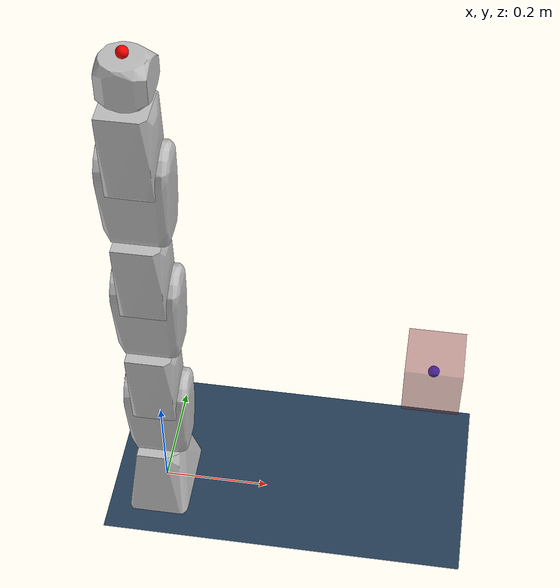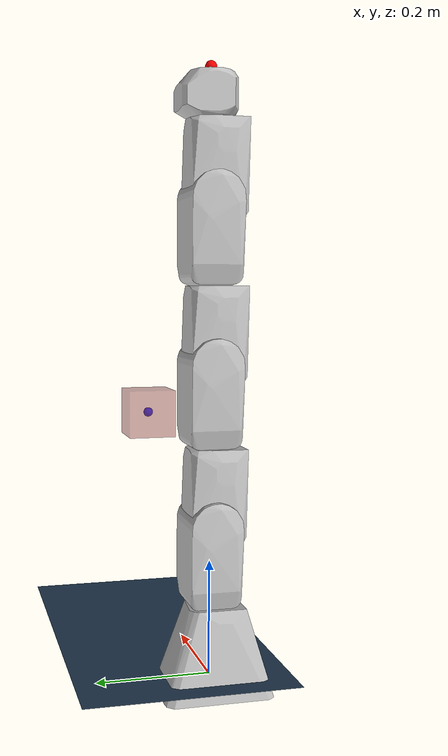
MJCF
<mujoco model="panda scene">
  <include file="rbs_arm_nohand.xml"/>

  <statistic center="0.3 0 0.4" extent="1"/>

  <visual>
    <headlight diffuse="0.6 0.6 0.6" ambient="0.3 0.3 0.3" specular="0 0 0"/>
    <rgba haze="0.15 0.25 0.35 1"/>
    <global azimuth="120" elevation="-20"/>
  </visual>

  <asset>
    <texture type="skybox" builtin="gradient" rgb1="0.3 0.5 0.7" rgb2="0 0 0" width="512" height="3072"/>
    <texture type="2d" name="groundplane" builtin="checker" mark="edge" rgb1="0.2 0.3 0.4" rgb2="0.1 0.2 0.3"
      markrgb="0.8 0.8 0.8" width="300" height="300"/>
    <material name="groundplane" texture="groundplane" texuniform="true" texrepeat="5 5" reflectance="0.2"/>
  </asset>

  <worldbody>
    <light pos="0 0 1.5" dir="0 0 -1" directional="true"/>
    <geom name="floor" size="0 0 0.05" type="plane" material="groundplane"/>

    <body name="target" pos="0.5 0 .4" quat="0 -0.707 -0.707 0" mocap="true">
      <geom type="box" size=".05 .05 .05" contype="0" conaffinity="0" rgba=".6 .3 .3 .5"/>
      <site type="sphere" size="0.01" rgba="0 0 1 1" group="1"/>
    </body>
  </worldbody>
</mujoco>

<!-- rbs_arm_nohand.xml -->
<mujoco model="rbs_arm_new">
  <compiler angle="radian" meshdir="../meshes/collision"></compiler>
  <asset>
    <mesh file="base_link.stl" name="base_link"></mesh>
    <mesh file="axis1_fork.stl" name="axis1_fork"></mesh>
    <mesh file="axis2_main.stl" name="axis2_main"></mesh>
    <mesh file="axis7_tail.stl" name="axis7_tail"></mesh>
  </asset>
  <default>
    <default class="rbs_arm">
      <general biastype="affine" ctrlrange="-6.14159 6.14159" dyntype="none" forcerange="-78 78"></general>
      <joint actuatorfrcrange="-78 78" armature="0.1" damping="1.0" range="-6.14159 6.14159"></joint>
      <default class="finger">
        <joint actuatorfrcrange="-10 10" axis="-1 0 0" pos="0 0 0" range="0 0.064" type="slide"></joint>
      </default>
      <default class="position_actuation">
        <default class="big_joint">
          <position kp="1000" kv="100"></position>
        </default>
        <default class="small_joint">
          <position kp="500" kv="50"></position>
        </default>
      </default>
    </default>
  </default>
  <worldbody>
    <body name="base" pos="0 0 0" childclass="rbs_arm">
    <geom conaffinity="0" contype="0" density="0" group="1" mesh="base_link" rgba="0.75294 0.75294 0.75294 1" type="mesh"></geom>
    <geom mesh="base_link" rgba="0.75294 0.75294 0.75294 1" type="mesh"></geom>
    <body  name="axis1_fork" pos="0 0 0.11165" quat="-3.67321e-06 0 0 -1">
      <inertial diaginertia="0.0044 0.005 0.0012" mass="0.5144" pos="-0.0064 0.0027 0.0675" quat="1.0 0.0 0.0 0.0"></inertial>
      <joint axis="0 0 1" name="joint1" pos="0 0 0"></joint>
      <geom conaffinity="0" contype="0" density="0" group="1" mesh="axis1_fork" rgba="0.75294 0.75294 0.75294 1" type="mesh"></geom>
      <geom mesh="axis1_fork" rgba="0.75294 0.75294 0.75294 1" type="mesh"></geom>
      <body name="axis2_main" pos="0 0 0.15465">
        <inertial diaginertia="0.0133 0.0132 0.0015" mass="1.2559" pos="-0.0017 0.0068 0.0855" quat="1.0 0.0 0.0 0.0"></inertial>
        <joint axis="1 0 0" name="joint2" pos="0 0 0" range="-2.43 2.43"></joint>
        <geom conaffinity="0" contype="0" density="0" group="1" mesh="axis2_main" rgba="0.75294 0.75294 0.75294 1" type="mesh"></geom>
        <geom mesh="axis2_main" rgba="0.75294 0.75294 0.75294 1" type="mesh"></geom>
        <body name="axis3_fork" pos="0 0 0.11995">
          <inertial diaginertia="0.0044 0.005 0.0012" mass="0.5144" pos="-0.0064 0.0027 0.0675" quat="1.0 0.0 0.0 0.0"></inertial>
          <joint axis="0 0 1" name="joint3" pos="0 0 0"></joint>
          <geom conaffinity="0" contype="0" density="0" group="1" mesh="axis1_fork" rgba="0.75294 0.75294 0.75294 1" type="mesh"></geom>
          <geom mesh="axis1_fork" rgba="0.75294 0.75294 0.75294 1" type="mesh"></geom>
          <body name="axis4_main" pos="0 0 0.15465">
            <inertial diaginertia="0.0133 0.0132 0.0015" mass="1.2559" pos="-0.0017 0.0068 0.0855" quat="1.0 0.0 0.0 0.0"></inertial>
            <joint axis="1 0 0" name="joint4" pos="0 0 0" range="-2.43 2.43"></joint>
            <geom conaffinity="0" contype="0" density="0" group="1" mesh="axis2_main" rgba="0.75294 0.75294 0.75294 1" type="mesh"></geom>
            <geom mesh="axis2_main" rgba="0.75294 0.75294 0.75294 1" type="mesh"></geom>
            <body name="axis5_fork" pos="0 0 0.11995">
              <inertial diaginertia="0.0044 0.005 0.0012" mass="0.5144" pos="-0.0064 0.0027 0.0675" quat="1.0 0.0 0.0 0.0"></inertial>
              <joint axis="0 0 1" name="joint5" pos="0 0 0"></joint>
              <geom conaffinity="0" contype="0" density="0" group="1" mesh="axis1_fork" rgba="0.75294 0.75294 0.75294 1" type="mesh"></geom>
              <geom mesh="axis1_fork" rgba="0.75294 0.75294 0.75294 1" type="mesh"></geom>
              <body name="axis6_main" pos="0 0 0.15465">
                <inertial diaginertia="0.0133 0.0132 0.0015" mass="1.2559" pos="-0.0017 0.0068 0.0855" quat="1.0 0.0 0.0 0.0"></inertial>
                <joint axis="1 0 0" name="joint6" pos="0 0 0" range="-2.43 2.43"></joint>
                <geom conaffinity="0" contype="0" density="0" group="1" mesh="axis2_main" rgba="0.75294 0.75294 0.75294 1" type="mesh"></geom>
                <geom mesh="axis2_main" rgba="0.75294 0.75294 0.75294 1" type="mesh"></geom>
                <body name="axis7_tail" pos="0 0 0.0754">
                  <inertial diaginertia="0.0013 0.0013 0.0004" mass="0.4617" pos="-0.001 0.0008 0.0427" quat="1.0 0.0 0.0 0.0"></inertial>
                  <joint axis="0 0 1" name="joint7" pos="0 0 0"></joint>
                  <geom conaffinity="0" contype="0" density="0" group="1" mesh="axis7_tail" rgba="0.75294 0.75294 0.75294 1" type="mesh"></geom>
                  <geom mesh="axis7_tail" rgba="0.75294 0.75294 0.75294 1" type="mesh"></geom>
                  <body name="attachment" pos="0 0 0.141" quat="0.0 0 0 1.0">
                      <inertial diaginertia="0.01 0.01 0.01" mass="5.0" pos="0 0 0" quat="1.0 0.0 0.0 0.0"></inertial>
                    <site group="1" name="attachment_site" quat="0 0 0 1" rgba="1 0 0 1" size="0.01"></site>
                  </body>
                </body>
              </body>
            </body>
          </body>
        </body>
      </body>
    </body>
  </body>
  </worldbody>

  <contact>
    <exclude body1="base" body2="axis1_fork"/>
  </contact>
  <actuator>
    <motor name="joint1" joint="joint1" ctrlrange="-320 320"/>
    <motor name="joint2" joint="joint2" ctrlrange="-320 320"/>
    <motor name="joint3" joint="joint3" ctrlrange="-176 176"/>
    <motor name="joint4" joint="joint4" ctrlrange="-176 176"/>
    <motor name="joint5" joint="joint5" ctrlrange="-110 110"/>
    <motor name="joint6" joint="joint6" ctrlrange="-78 78"/>
    <motor name="joint7" joint="joint7" ctrlrange="-78 78"/>
  </actuator>
  <keyframe>
    <key ctrl="0.0 -0.259285 0.0 -0.856813 0.0 -0.903378 0.0" name="home" qpos="0.0 -0.259285 0.0 -0.856813 0.0 -0.903378 0.0"></key>
    <key ctrl="0.0 0.0 0.0 0.0 0.0 0.0 0.0" name="zero" qpos="0.0 0.0 0.0 0.0 0.0 0.0 0.0"></key>
    <key ctrl="0.0 -1.570795 0.0 0.0 0.0 0.0 0.0" name="load" qpos="0.0 -1.570795 0.0 0.0 0.0 0.0 0.0"></key>
  </keyframe>
</mujoco>
